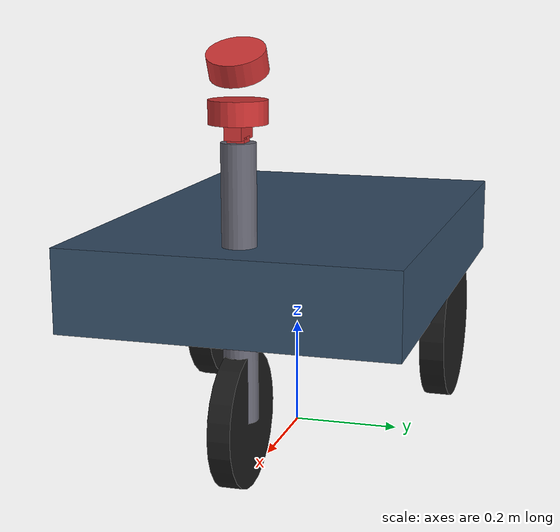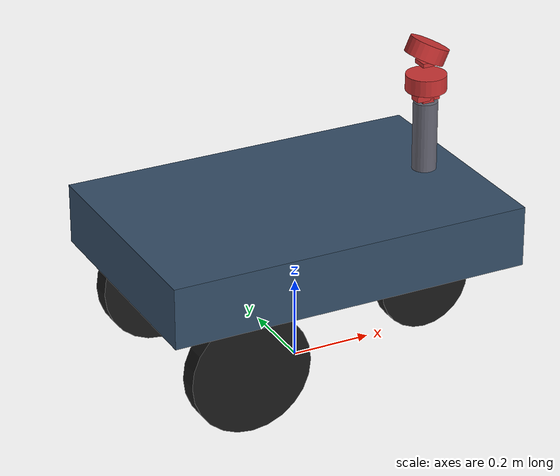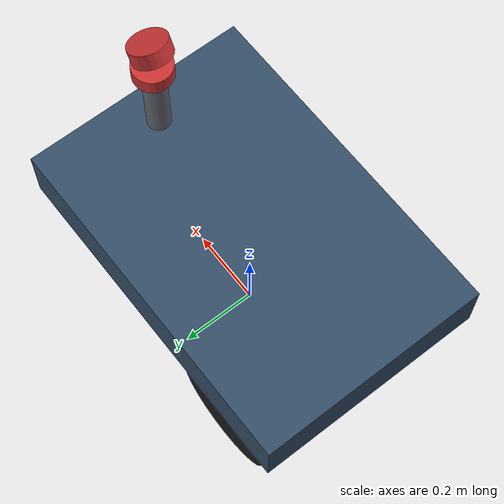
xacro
<?xml version="1.0"?>
<robot xmlns:xacro="http://www.ros.org/wiki/xacro" name="golfcart">

  <!-- ===================== Parameters (edit these) ===================== -->
  <!-- Chassis -->
  <xacro:property name="chassis_length" value="0.9"/>   <!-- m, front-to-back -->
  <xacro:property name="chassis_width"  value="0.6"/>   <!-- m, side-to-side -->
  <xacro:property name="chassis_height" value="0.15"/>  <!-- m, thickness -->
  <xacro:property name="chassis_z"       value="0.35"/>   <!-- m, height of chassis above ground -->

  <!-- Rear wheels (driven) -->
  <xacro:property name="rear_wheel_radius" value="0.15"/>
  <xacro:property name="rear_wheel_width"  value="0.05"/>
  <xacro:property name="rear_wheel_base"   value="0.5"/>  <!-- m, distance between rear wheels (track) -->
  <xacro:property name="rear_axle_x"       value="-0.25"/> <!-- m, rear axle position along X (behind center) -->

  <!-- Front wheel (steering caster) -->
  <xacro:property name="front_wheel_radius" value="0.12"/>
  <xacro:property name="front_wheel_width"  value="0.04"/>
  <xacro:property name="front_wheel_x"       value="0.35"/>  <!-- m, front wheel position along X (ahead of center) -->
  <xacro:property name="front_wheel_y"       value="0.0"/>   <!-- m, centered -->

  <!-- Mast / sensor column (above front wheel) -->
  <xacro:property name="mast_x" value="0.35"/>  <!-- m, same X as front wheel -->
  <xacro:property name="mast_y" value="0.0"/>   <!-- m, centered -->
  <xacro:property name="mast_z" value="0.6"/>   <!-- m, height of sensor platform above ground -->

  <!-- Sensor offsets (relative to mast top; edit with measured values) -->
  <xacro:property name="lidar_offset_z"  value="0.05"/>  <!-- m, above mast top -->
  <xacro:property name="camera_offset_z" value="0.02"/>  <!-- m, above mast top -->
  <xacro:property name="imu_offset_z"    value="0.0"/>   <!-- m, at mast top -->
  <xacro:property name="gps_offset_z"    value="0.10"/>  <!-- m, above mast top -->

  <!-- ===================== Materials ===================== -->
  <material name="chassis_mat">
    <color rgba="0.2 0.3 0.4 1.0"/>
  </material>
  <material name="wheel_mat">
    <color rgba="0.1 0.1 0.1 1.0"/>
  </material>
  <material name="mast_mat">
    <color rgba="0.4 0.4 0.45 1.0"/>
  </material>
  <material name="sensor_mat">
    <color rgba="0.8 0.2 0.2 1.0"/>
  </material>

  <!-- ===================== Base link (chassis) ===================== -->
  <link name="base_link">
    <visual>
      <geometry>
        <box size="${chassis_length} ${chassis_width} ${chassis_height}"/>
      </geometry>
      <origin xyz="0 0 ${chassis_z}" rpy="0 0 0"/>
      <material name="chassis_mat"/>
    </visual>
    <collision>
      <geometry>
        <box size="${chassis_length} ${chassis_width} ${chassis_height}"/>
      </geometry>
      <origin xyz="0 0 ${chassis_z}" rpy="0 0 0"/>
    </collision>
  </link>

  <!-- ===================== Rear wheels (driven, fixed) ===================== -->
  <!-- Left rear wheel -->
  <link name="rear_left_wheel">
    <visual>
      <geometry>
        <cylinder radius="${rear_wheel_radius}" length="${rear_wheel_width}"/>
      </geometry>
      <origin xyz="0 0 0" rpy="${pi/2} 0 0"/>
      <material name="wheel_mat"/>
    </visual>
    <collision>
      <geometry>
        <cylinder radius="${rear_wheel_radius}" length="${rear_wheel_width}"/>
      </geometry>
      <origin xyz="0 0 0" rpy="${pi/2} 0 0"/>
    </collision>
    <inertial>
      <mass value="1.0"/>
      <inertia ixx="0.01" ixy="0.0" ixz="0.0" iyy="0.01" iyz="0.0" izz="0.01"/>
    </inertial>
  </link>

  <joint name="rear_left_wheel_joint" type="continuous">
    <parent link="base_link"/>
    <child link="rear_left_wheel"/>
    <origin xyz="${rear_axle_x} ${rear_wheel_base/2} ${rear_wheel_radius}" rpy="0 0 0"/>
    <axis xyz="0 1 0"/>
  </joint>

  <!-- Right rear wheel -->
  <link name="rear_right_wheel">
    <visual>
      <geometry>
        <cylinder radius="${rear_wheel_radius}" length="${rear_wheel_width}"/>
      </geometry>
      <origin xyz="0 0 0" rpy="${pi/2} 0 0"/>
      <material name="wheel_mat"/>
    </visual>
    <collision>
      <geometry>
        <cylinder radius="${rear_wheel_radius}" length="${rear_wheel_width}"/>
      </geometry>
      <origin xyz="0 0 0" rpy="${pi/2} 0 0"/>
    </collision>
    <inertial>
      <mass value="1.0"/>
      <inertia ixx="0.01" ixy="0.0" ixz="0.0" iyy="0.01" iyz="0.0" izz="0.01"/>
    </inertial>
  </link>

  <joint name="rear_right_wheel_joint" type="continuous">
    <parent link="base_link"/>
    <child link="rear_right_wheel"/>
    <origin xyz="${rear_axle_x} ${-rear_wheel_base/2} ${rear_wheel_radius}" rpy="0 0 0"/>
    <axis xyz="0 1 0"/>
  </joint>

  <!-- ===================== Front wheel (steering caster) ===================== -->
  <!-- Steering column: rotates on the vertical (Z) axis. -->
  <link name="front_steer">
    <visual>
      <geometry>
        <cylinder radius="0.02" length="0.15"/>
      </geometry>
      <origin xyz="0 0 ${front_wheel_radius}" rpy="0 0 0"/>
      <material name="mast_mat"/>
    </visual>
    <collision>
      <geometry>
        <cylinder radius="0.02" length="0.15"/>
      </geometry>
      <origin xyz="0 0 ${front_wheel_radius}" rpy="0 0 0"/>
    </collision>
    <inertial>
      <mass value="0.5"/>
      <inertia ixx="0.001" ixy="0.0" ixz="0.0" iyy="0.001" iyz="0.0" izz="0.001"/>
    </inertial>
  </link>

  <joint name="front_steer_joint" type="continuous">
    <parent link="base_link"/>
    <child link="front_steer"/>
    <origin xyz="${front_wheel_x} ${front_wheel_y} 0" rpy="0 0 0"/>
    <axis xyz="0 0 1"/>  <!-- rotates on vertical axis to steer -->
  </joint>

  <!-- Front wheel itself (spins on its own horizontal axis) -->
  <link name="front_wheel">
    <visual>
      <geometry>
        <cylinder radius="${front_wheel_radius}" length="${front_wheel_width}"/>
      </geometry>
      <origin xyz="0 0 0" rpy="${pi/2} 0 0"/>
      <material name="wheel_mat"/>
    </visual>
    <collision>
      <geometry>
        <cylinder radius="${front_wheel_radius}" length="${front_wheel_width}"/>
      </geometry>
      <origin xyz="0 0 0" rpy="${pi/2} 0 0"/>
    </collision>
    <inertial>
      <mass value="0.8"/>
      <inertia ixx="0.005" ixy="0.0" ixz="0.0" iyy="0.005" iyz="0.0" izz="0.005"/>
    </inertial>
  </link>

  <joint name="front_wheel_joint" type="continuous">
    <parent link="front_steer"/>
    <child link="front_wheel"/>
    <origin xyz="0 0 ${front_wheel_radius}" rpy="0 0 0"/>
    <axis xyz="0 1 0"/>  <!-- spins on its own horizontal axis -->
  </joint>

  <!-- ===================== Mast / sensor column (above front wheel) ===================== -->
  <link name="mast">
    <visual>
      <geometry>
        <cylinder radius="0.03" length="${mast_z - front_wheel_radius}"/>
      </geometry>
      <origin xyz="0 0 ${(mast_z + front_wheel_radius)/2}" rpy="0 0 0"/>
      <material name="mast_mat"/>
    </visual>
    <collision>
      <geometry>
        <cylinder radius="0.03" length="${mast_z - front_wheel_radius}"/>
      </geometry>
      <origin xyz="0 0 ${(mast_z + front_wheel_radius)/2}" rpy="0 0 0"/>
    </collision>
    <inertial>
      <mass value="0.5"/>
      <inertia ixx="0.001" ixy="0.0" ixz="0.0" iyy="0.001" iyz="0.0" izz="0.001"/>
    </inertial>
  </link>

  <!-- Mast is fixed to the chassis (does not rotate with the front wheel). -->
  <joint name="mast_joint" type="fixed">
    <parent link="base_link"/>
    <child link="mast"/>
    <origin xyz="${mast_x} ${mast_y} 0" rpy="0 0 0"/>
  </joint>

  <!-- ===================== Sensors (above mast top) ===================== -->
  <!-- LiDAR -->
  <link name="lidar_link">
    <visual>
      <geometry>
        <cylinder radius="0.05" length="0.04"/>
      </geometry>
      <origin xyz="0 0 0" rpy="0 0 0"/>
      <material name="sensor_mat"/>
    </visual>
    <collision>
      <geometry>
        <cylinder radius="0.05" length="0.04"/>
      </geometry>
      <origin xyz="0 0 0" rpy="0 0 0"/>
    </collision>
  </link>
  <joint name="lidar_joint" type="fixed">
    <parent link="mast"/>
    <child link="lidar_link"/>
    <origin xyz="0 0 ${mast_z + lidar_offset_z}" rpy="0 0 0"/>
  </joint>

  <!-- Tilted LiDAR for ground, ditch, and stream detection. -->
  <link name="lidar_tilted_link">
    <visual>
      <geometry>
        <cylinder radius="0.05" length="0.04"/>
      </geometry>
      <origin xyz="0 0 0" rpy="0 0 0"/>
      <material name="sensor_mat"/>
    </visual>
    <collision>
      <geometry>
        <cylinder radius="0.05" length="0.04"/>
      </geometry>
      <origin xyz="0 0 0" rpy="0 0 0"/>
    </collision>
  </link>
  <joint name="lidar_tilted_joint" type="fixed">
    <parent link="mast"/>
    <child link="lidar_tilted_link"/>
    <origin xyz="0 0 ${mast_z + lidar_offset_z + 0.08}" rpy="0 0.436332 0"/>
  </joint>

  <!-- Camera -->
  <link name="camera_link">
    <visual>
      <geometry>
        <box size="0.06 0.03 0.03"/>
      </geometry>
      <origin xyz="0 0 0" rpy="0 0 0"/>
      <material name="sensor_mat"/>
    </visual>
    <collision>
      <geometry>
        <box size="0.06 0.03 0.03"/>
      </geometry>
      <origin xyz="0 0 0" rpy="0 0 0"/>
    </collision>
  </link>
  <joint name="camera_joint" type="fixed">
    <parent link="mast"/>
    <child link="camera_link"/>
    <origin xyz="0 0 ${mast_z + camera_offset_z}" rpy="0 0 0"/>
  </joint>

  <!-- IMU -->
  <link name="imu_link">
    <visual>
      <geometry>
        <box size="0.03 0.03 0.02"/>
      </geometry>
      <origin xyz="0 0 0" rpy="0 0 0"/>
      <material name="sensor_mat"/>
    </visual>
    <collision>
      <geometry>
        <box size="0.03 0.03 0.02"/>
      </geometry>
      <origin xyz="0 0 0" rpy="0 0 0"/>
    </collision>
  </link>
  <joint name="imu_joint" type="fixed">
    <parent link="mast"/>
    <child link="imu_link"/>
    <origin xyz="0 0 ${mast_z + imu_offset_z}" rpy="0 0 0"/>
  </joint>

  <!-- GPS -->
  <link name="gps_link">
    <visual>
      <geometry>
        <box size="0.04 0.04 0.01"/>
      </geometry>
      <origin xyz="0 0 0" rpy="0 0 0"/>
      <material name="sensor_mat"/>
    </visual>
    <collision>
      <geometry>
        <box size="0.04 0.04 0.01"/>
      </geometry>
      <origin xyz="0 0 0" rpy="0 0 0"/>
    </collision>
  </link>
  <joint name="gps_joint" type="fixed">
    <parent link="mast"/>
    <child link="gps_link"/>
    <origin xyz="0 0 ${mast_z + gps_offset_z}" rpy="0 0 0"/>
  </joint>

</robot>
